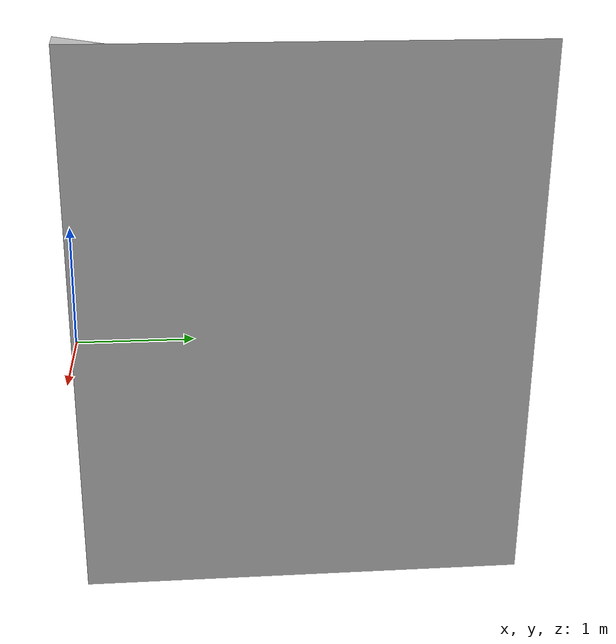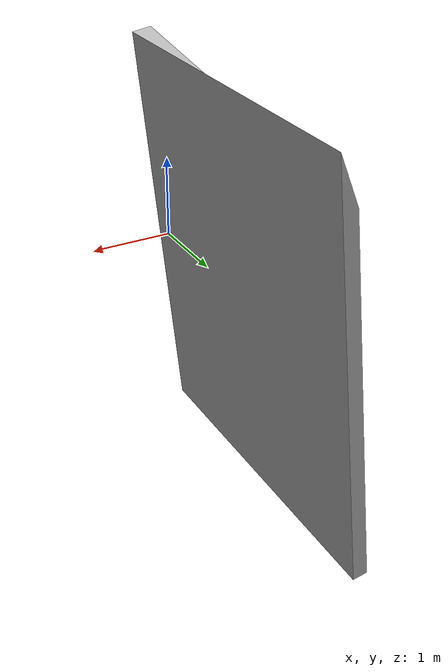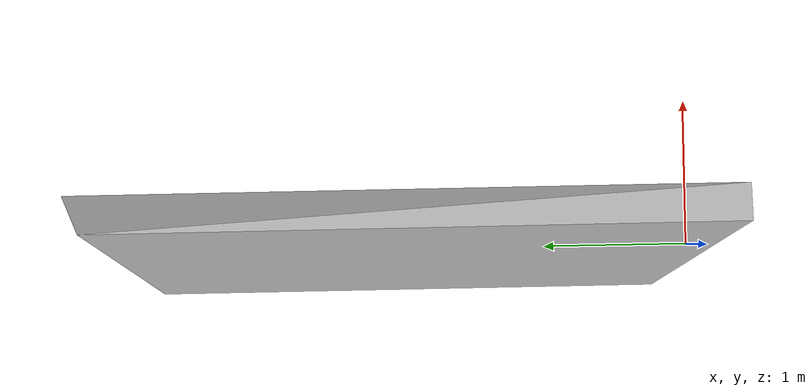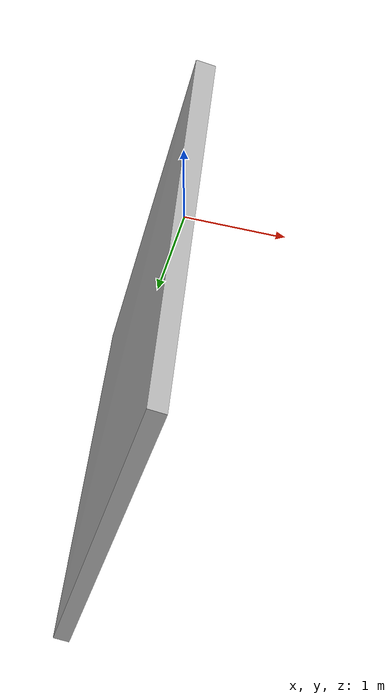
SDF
<?xml version="1.0" ?>
<sdf version="1.6">
  <model name="tree">
    <static>true</static>
    <link name="link">
      <visual name="visual">
        <geometry>
          <mesh>
            <uri>model://tree/meshes/tree.obj</uri>
          </mesh>
        </geometry>
      </visual>

      <collision name="collision">
        <geometry>
          <mesh><uri>model://tree/meshes/tree.stl</uri></mesh>
        </geometry>
      </collision>
    </link>
  </model>
</sdf>
